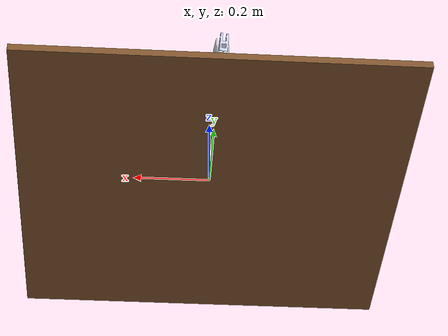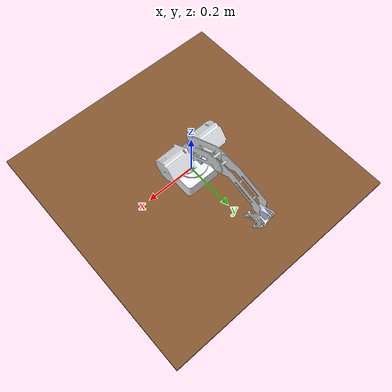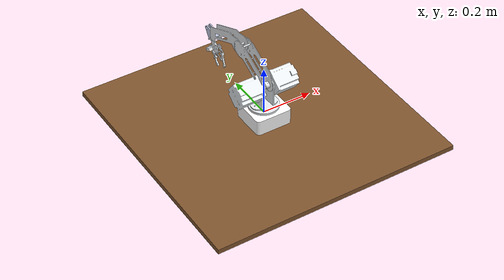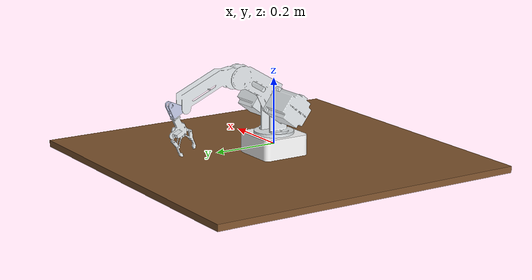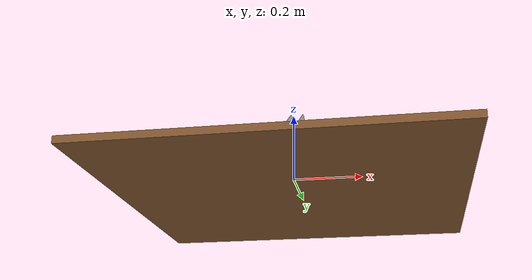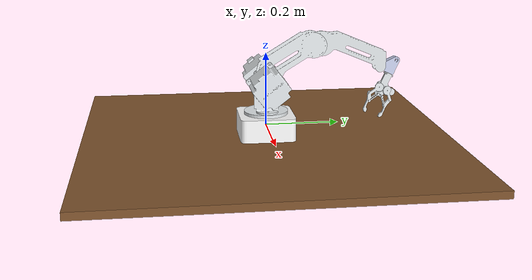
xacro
<?xml version="1.0"?>
<robot xmlns:xacro="http://www.ros.org/wiki/xacro"  name="dobot_magician" >

<!--- _________________TRANSMISSION BLOCK SUBRUTINE___________-->

   <xacro:macro name="transmission_block" params="joint_name">
	  <transmission name="tran1">
	    <type>transmission_interface/SimpleTransmission</type>
	    <joint name="${joint_name}">
	      <hardwareInterface>hardware_interface/PositionJointInterface</hardwareInterface>
	    </joint>
	    <actuator name="motor1">
	      <mechanicalReduction>1</mechanicalReduction>
	    </actuator>
	  </transmission>
   </xacro:macro>

<!--- ____________________BOTTOM_LINK_________________________-->

  <link name="bottom_link">

    <visual>
      <origin xyz=" 0 0 -0.04"  rpy="0 0 0"/>
      <geometry>
	 <box size="1 1 0.02" />
      </geometry>
      <material name="Brown" />
    </visual>

    <collision>
      <origin xyz=" 0 0 -0.04"  rpy="0 0 0"/>
      <geometry>
	  <box size="1 1 0.02" />
      </geometry>
      </collision>>

  </link>

<!--- ____________________BOTTOM_JOINT________________________-->

  <joint name="bottom_joint" type="fixed">

    <origin xyz="0 0 0" rpy="0 0 0" />
    <parent link="bottom_link"/>
    <child link="base_link"/>

  </joint>

<!--- ____________________LINK 0 - BASE_LINK__________________-->

<link name="base_link">

    <visual>
      <origin xyz="0 0 0" rpy="0 0 0" />
      <geometry>
       <mesh filename="package://dobot_magician_pkg/meshes/base.dae"/>
      </geometry>
      <material name="Aluminum 6061">
        <color  rgba="1 1 1 1" />
      </material>
    </visual>

      <inertial>
      	<mass value="5" />
        <inertia ixx="0" ixy="0" ixz="0" iyy="0" iyz="0" izz="0" />
      </inertial>

    <collision>
      <origin xyz="0 0 0" rpy="0 0 0" />
      <geometry>
         <mesh filename="package://dobot_magician_pkg/meshes/base.dae"/>
      </geometry>
    </collision>

  </link>

<!--- ____________________JOINT-BASE__________________________-->

 <joint name="joint_base" type="revolute">

    <origin xyz="0 0 0.101" rpy="0.03 0 0" />
    <parent link="base_link" />
    <child  link="link_1" />
    <axis   xyz="0 0 1" />
    <limit effort="300" velocity="0.4" lower="-3" upper="3"/>
    <dynamics damping="20" friction="1"/>

  </joint>

<!--- ____________________LINK 1______________________________-->

  <link name="link_1">

    <visual>
      <origin xyz="0 0 0" rpy="0 0 0" />
      <geometry>
        <mesh filename="package://dobot_magician_pkg/meshes/link1.dae"/>
      </geometry>
      <material name="Aluminum 6061">
        <color  rgba="0.89804 0.91765 0.92941 1" />
      </material>
    </visual>

     <inertial>
      	<mass value="0.05" />
        <inertia ixx="1" ixy="0.0" ixz="0.0" iyy="1" iyz="0.0" izz="1" />
    </inertial>

    <collision>
      <origin xyz="0 0.01 0.035" rpy="0 0 0" />
      <geometry>
        <mesh filename="package://dobot_magician_pkg/meshes/link1.dae"/>
      </geometry>
    </collision>

  </link>

<!--- ____________________JOINT 2_____________________________-->

  <joint name="joint_2" type="revolute">

    <origin xyz="-0.07203 0 0.026" rpy="0 0 -1.5" />
    <parent link="link_1" />
    <child  link="link_2" />
    <axis   xyz="0 1 0" />
    <limit effort="300" velocity="0.4" lower="-2.18" upper="-0.65"/>
    <dynamics damping="50" friction="1"/>

   </joint>

<!--- ____________________LINK 2______________________________-->

   <link name="link_2">

   <visual>
      <origin xyz="0 0 0" rpy="0 1 0" />
      <geometry>
          <mesh filename="package://dobot_magician_pkg/meshes/Link_2.dae"/>
      </geometry>
      <material name="Aluminum 6061">
        <color  rgba="0.89804 0.91765 0.92941 1" />
      </material>
    </visual>

      <inertial>
      	<mass value="0.05" />
        <inertia ixx="1" ixy="0.0" ixz="0.0" iyy="1" iyz="0.0" izz="1" />
      </inertial>

    <collision>
     <origin xyz="0 -0.0745 0" rpy="0 1 0" />
      <geometry>
          <mesh filename="package://dobot_magician_pkg/meshes/Link_2.dae"/>
      </geometry>
    </collision>

  </link>

<!--- ____________________JOINT 3_____________________________-->

  <joint name="joint_3" type="revolute">

    <origin xyz="0.065 0.084 0.16" rpy="0 2 0" />
    <parent link="link_2" />
    <child  link="link_3" />
    <axis   xyz="0 1 0" />
    <limit effort="300" velocity="0.4" lower="-2.18" upper="-1.26"/>
    <dynamics damping="50" friction="1"/>

  </joint>

<!--- ____________________LINK 3______________________________-->

  <link name="link_3">

    <visual>
      <origin xyz="0 0 0" rpy="0 0 0" />
      <geometry>
        <mesh filename="package://dobot_magician_pkg/meshes/Link_3.dae"/>
      </geometry>
      <material name="Aluminum 6061">
        <color  rgba="0.89804 0.91765 0.92941 1" />
      </material>
    </visual>

      <inertial>
      	<mass value="0.1" />
        <inertia ixx="1" ixy="0.0" ixz="0.0" iyy="1" iyz="0.0" izz="1"/>
      </inertial>

    <collision>
      <origin xyz="0 0 0" rpy="0 0 0" />
      <geometry>
    <mesh filename="package://dobot_magician_pkg/meshes/Link_3.dae"/>
      </geometry>
    </collision>

  </link>

<!--- ____________________JOINT 4_____________________________-->

  <joint name="joint_4" type="revolute">

    <origin xyz="-0.135 -0.0005 0.12" rpy="0 -1 0" />
    <parent link="link_3" />
    <child  link="link_4" />
    <axis   xyz="0 1 0" />
    <limit effort="300" velocity="0.4" lower="1.30" upper="2.01"/>
    <dynamics damping="50" friction="1"/>

  </joint>

<!--- ____________________LINK 4______________________________-->

  <link name="link_4">

    <visual>
      <origin xyz="0 -0.005 0" rpy="1.55 0 3.15" />
      <geometry>
        <mesh filename="package://dobot_magician_pkg/meshes/link_4.dae"/>
      </geometry>
      <material name="Aluminum 6061">
        <color  rgba="0.79216 0.81961 0.93333 1" />
      </material>
    </visual>

    <inertial>
      	<mass value="0.1" />
        <inertia ixx="1" ixy="0.0" ixz="0.0" iyy="1" iyz="0.0" izz="1"/>
    </inertial>

    <collision>
      <origin xyz="0 -0.005 0" rpy="1.55 0 3.15" />
      <geometry>
        <mesh filename="package://dobot_magician_pkg/meshes/link_4.dae"/>
      </geometry>
    </collision>

  </link>

<!--- ____________________JOINT GRIPPER_______________________-->

  <joint name="joint_gripper" type="revolute">

    <origin xyz="-0.036 0 -0.04" rpy="0 0 0" />
    <parent link="link_4" />
    <child link="Gripper_joint" />
    <axis xyz="0 0 1" />
    <limit effort="300" velocity="0.4" lower="-3.18" upper="3.18"/>
    <dynamics damping="50" friction="1"/>

  </joint>

<!--- ____________________LINK_GRIPPER________________________-->

  <link name="Gripper_joint">

   <visual>
      <origin xyz="0 0 0.037" rpy="0 0 0" />
      <geometry>
        <mesh filename="package://dobot_magician_pkg/meshes/Gripper_part_1.dae"/>
      </geometry>
      <material name="Aluminum 6061">
        <color rgba="0.89804 0.91765 0.92941 1" />
      </material>
    </visual>

      <inertial>
      	<mass value="0.2" />
        <inertia ixx="1" ixy="0.0" ixz="0.0" iyy="1" iyz="0.0" izz="1"/>
      </inertial>

    <collision>
      <origin xyz="0 0 0.037" rpy="0 0 0" />
      <geometry>
        <mesh filename="package://dobot_magician_pkg/meshes/Gripper_part_1.dae"/>
      </geometry>
    </collision>

  </link>

<!--- ____________________JOINT_GRIPPER_FINGER_LEFT___________-->

   <joint name="Gripper_left" type="revolute">

    <origin xyz="0.013 0.01 -0.012" rpy="0 0 0" />
    <parent link="Gripper_joint" />
    <child link="Gripper_finger_left" />
    <axis xyz="0 1 0" />
    <limit effort="300" velocity="0.4" lower="-2.7" upper="2.7"/>
     <dynamics damping="50" friction="1"/>

  </joint>

<!--- ____________________LINK_GRIPPER_LEFT___________________-->

  <link name="Gripper_finger_left">

   <visual>
      <origin xyz="0 0 0" rpy="0 0 0" />
      <geometry>
        <mesh filename="package://dobot_magician_pkg/meshes/Gripper_left.dae"/>
      </geometry>
      <material name="Aluminum 6061">
        <color rgba="0.89804 0.91765 0.92941 1" />
      </material>
    </visual>

     <inertial>
      	<mass value="0.2" />
        <inertia ixx="0.000012" ixy="0.0" ixz="0.0" iyy="0.000013" iyz="0.0" izz="0.000019" />
      </inertial>

    <collision>
      <origin xyz="0 0 0" rpy="0 0 0" />
      <geometry>
        <mesh filename="package://dobot_magician_pkg/meshes/Gripper_left.dae"/>
      </geometry>
    </collision>

  </link>

<!--- ____________________JOINT GRIPPER_FINGER_RIGHT__________-->

   <joint name="Gripper_right" type="revolute">

    <origin xyz="-0.013 0.01 -0.012" rpy="0 0 0" />
    <parent link="Gripper_joint" />
    <child link="Gripper_finger_right" />
    <axis xyz="0 -1 0" />
    <limit effort="300" velocity="0.4" lower="2.7" upper="3.3"/>
    <dynamics damping="50" friction="1"/>

   </joint>

<!--- ____________________LINK_FINGER_GRIPPER RIGHT___________-->

  <link name="Gripper_finger_right">

   <visual>
      <origin xyz="0 0 0" rpy="0 0 0" />
      <geometry>
        <mesh filename="package://dobot_magician_pkg/meshes/Gripper_right.dae"/>
      </geometry>
      <material name="Aluminum 6061">
        <color rgba="0.89804 0.91765 0.92941 1" />
      </material>
    </visual>

     <inertial>
      	<mass value="0.2" />
        <inertia ixx="0.000012" ixy="0.0" ixz="0.0" iyy="0.000013" iyz="0.0" izz="0.000019" />
     </inertial>

    <collision>
      <origin xyz="0 0 0" rpy="0 0 0" />
      <geometry>
        <mesh filename="package://dobot_magician_pkg/meshes/Gripper_right.dae"/>
      </geometry>
    </collision>

  </link>

<!--- _________________TRANSMISSION BLOCK_____________________-->

   <xacro:transmission_block joint_name="joint_base"/>
   <xacro:transmission_block joint_name="joint_2"/>
   <xacro:transmission_block joint_name="joint_3"/>
   <xacro:transmission_block joint_name="joint_4"/>
   <xacro:transmission_block joint_name="joint_gripper"/>
   <xacro:transmission_block joint_name="Gripper_left"/>
   <xacro:transmission_block joint_name="Gripper_right"/>

<!--- _________________GAZEBO PLUGIN__________________________-->

  <gazebo>
    <plugin name="gazebo_ros_control" filename="libgazebo_ros_control.so">
      <robotNamespace>/dobot_magician</robotNamespace>
    </plugin>
  </gazebo>

<!--- ___________________________________DESCRIPTION END________________________________________________________ -->

<!--- ___________________________________DESCRIPTION DOBOT MAGICIAN_____________________________________________ -->
<!--- _DANIEL_TOBON_COLLAZOS_2126550_____________________________________________________________________________-->

</robot>
